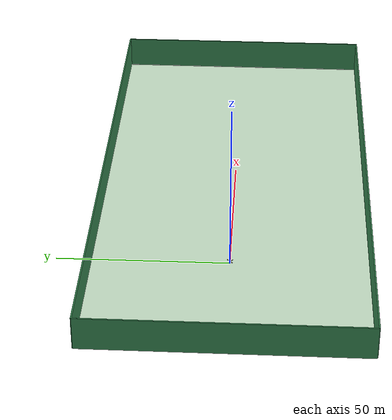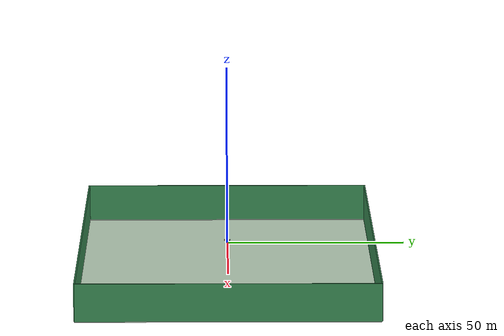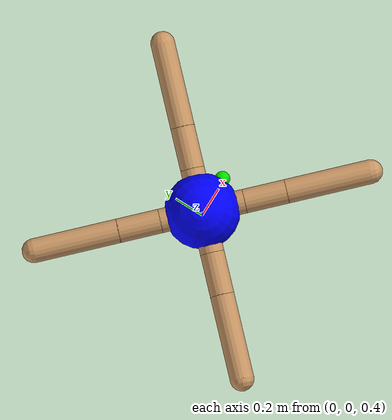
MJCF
<!--
 Описание:
	Переделаны границы углов для походки
	Установлен акселерометр и гироскоп
	Установлен дальномер

 Изменения:
	Добавлен дальномер
	Добавлена камера

 -->
<mujoco model="ant_sensor">
  <compiler angle="degree" inertiafromgeom="true"/>
  <option integrator="RK4" timestep="0.01"/>

  <custom>
    <numeric data="0.0 0.0 0.55 1.0 0.0 0.0 0.0 0.0 1.0 0.0 -1.0 0.0 -1.0 0.0 1.0" name="init_qpos"/>
  </custom>

  <default>
    <joint armature="1" damping="1" limited="true"/>
    <geom conaffinity="0" condim="3" density="5.0" friction="1 0.5 0.5" margin="0.01" rgba="0.8 0.6 0.4 1"/>
  </default>

  <asset>
    <texture builtin="gradient" height="100" rgb1="1 1 1" rgb2="0 0 0" type="skybox" width="100"/>
    <texture builtin="flat" height="1278" mark="cross" markrgb="1 1 1" name="texgeom" random="0.01" rgb1="0.8 0.6 0.4" rgb2="0.8 0.6 0.4" type="cube" width="127"/>
    <texture builtin="checker" height="100" name="texplane" rgb1="0 0 0" rgb2="0.8 0.8 0.8" type="2d" width="100"/>
    <material name="MatPlane" reflectance="0.5" shininess="1" specular="1" texrepeat="60 60" texture="texplane"/>
    <material name="geom" texture="texgeom" texuniform="true"/>
  </asset>

  <worldbody>
    <light cutoff="100" diffuse="1 1 1" dir="-0 0 -1.3" directional="true" exponent="1" pos="0 0 1.3" specular=".1 .1 .1"/>
    <geom conaffinity="1" condim="3" material="MatPlane" name="floor" pos="40 0 0" rgba="0.8 0.9 0.8 1" size="80 40 40" type="plane"/>
	<geom name="start_point" pos="0 0 0.0001" rgba="0 0.2 0.8 0.5" size="1 1 1" type="plane"/>

	<geom name="behind_wall" type="box" pos="-40 0 5" size="0.2 40 5" rgba="0.2 0.5 0.3 1"/>
	<geom name="ahead_wall" type="box" pos="120 0 5" size="0.2 40 5" rgba="0.2 0.5 0.3 1"/>
	<geom name="right_wall" type="box" pos="40 -40 5" size="80 0.2 5" rgba="0.2 0.5 0.3 1"/>
	<geom name="left_wall" type="box" pos="40 40 5" size="80 0.2 5" rgba="0.2 0.5 0.3 1"/>

    <body name="torso" pos="0 0 0.75">
      <camera name="track" mode="trackcom" pos="0 -3 0.3" xyaxes="1 0 0 0 0 1"/>
      <geom name="torso_geom" pos="0 0 0" size="0.25" type="sphere" rgba="0 0 1 1"/>
      <joint armature="0" damping="0" limited="false" margin="0.01" name="root" pos="0 0 0" type="free"/>
      <body name="front_left_leg" pos="0 0 0">
        <geom fromto="0.0 0.0 0.0 0.2 0.2 0.0" name="aux_1_geom" size="0.08" type="capsule"/>
        <body name="aux_1" pos="0.2 0.2 0">
          <joint axis="0 0 1" name="hip_1" pos="0.0 0.0 0.0" range="-30 45" type="hinge"/>
          <geom fromto="0.0 0.0 0.0 0.2 0.2 0.0" name="left_leg_geom" size="0.08" type="capsule"/>
          <body pos="0.2 0.2 0">
            <joint axis="-1 1 0" name="ankle_1" pos="0.0 0.0 0.0" range="30 90" type="hinge"/>
            <geom fromto="0.0 0.0 0.0 0.4 0.4 0.0" name="left_ankle_geom" size="0.08" type="capsule"/>
          </body>
        </body>
      </body>
      <body name="front_right_leg" pos="0 0 0">
        <geom fromto="0.0 0.0 0.0 -0.2 0.2 0.0" name="aux_2_geom" size="0.08" type="capsule"/>
        <body name="aux_2" pos="-0.2 0.2 0">
          <joint axis="0 0 1" name="hip_2" pos="0.0 0.0 0.0" range="-45 30" type="hinge"/>
          <geom fromto="0.0 0.0 0.0 -0.2 0.2 0.0" name="right_leg_geom" size="0.08" type="capsule"/>
          <body pos="-0.2 0.2 0">
            <joint axis="1 1 0" name="ankle_2" pos="0.0 0.0 0.0" range="-90 -30" type="hinge"/>
            <geom fromto="0.0 0.0 0.0 -0.4 0.4 0.0" name="right_ankle_geom" size="0.08" type="capsule"/>
          </body>
        </body>
      </body>
      <body name="back_leg" pos="0 0 0">
        <geom fromto="0.0 0.0 0.0 -0.2 -0.2 0.0" name="aux_3_geom" size="0.08" type="capsule"/>
        <body name="aux_3" pos="-0.2 -0.2 0">
          <joint axis="0 0 1" name="hip_3" pos="0.0 0.0 0.0" range="-30 45" type="hinge"/>
          <geom fromto="0.0 0.0 0.0 -0.2 -0.2 0.0" name="back_leg_geom" size="0.08" type="capsule"/>
          <body pos="-0.2 -0.2 0">
            <joint axis="-1 1 0" name="ankle_3" pos="0.0 0.0 0.0" range="-90 -30" type="hinge"/>
            <geom fromto="0.0 0.0 0.0 -0.4 -0.4 0.0" name="third_ankle_geom" size="0.08" type="capsule"/>
          </body>
        </body>
      </body>
      <body name="right_back_leg" pos="0 0 0">
        <geom fromto="0.0 0.0 0.0 0.2 -0.2 0.0" name="aux_4_geom" size="0.08" type="capsule"/>
        <body name="aux_4" pos="0.2 -0.2 0">
          <joint axis="0 0 1" name="hip_4" pos="0.0 0.0 0.0" range="-45 30" type="hinge"/>
          <geom fromto="0.0 0.0 0.0 0.2 -0.2 0.0" name="rightback_leg_geom" size="0.08" type="capsule"/>
          <body pos="0.2 -0.2 0">
            <joint axis="1 1 0" name="ankle_4" pos="0.0 0.0 0.0" range="30 90" type="hinge"/>
            <geom fromto="0.0 0.0 0.0 0.4 -0.4 0.0" name="fourth_ankle_geom" size="0.08" type="capsule"/>
          </body>
        </body>
      </body>

	  <!-- Ссылка на датчики -->
	  <site name="IMU"/>
	  <site name="range_site" pos="0.25 0 0" euler="0 90 0" rgba="0 0.9 0 1" size="0.05"/>
	  <camera name="track_cam" pos="0 -4 1" euler ="80 0 0" mode="trackcom"/>
    </body>

  </worldbody>
  <actuator>
    <position ctrllimited="true" ctrlrange="-0.785 0.524" joint="hip_4"   kp="250" kv="10"/>
	<position ctrllimited="true" ctrlrange="0.524 1.571"   joint="ankle_4" kp="250" kv="10"/>
    <position ctrllimited="true" ctrlrange="-0.524 0.785" joint="hip_1"   kp="250" kv="10"/>
    <position ctrllimited="true" ctrlrange="0.524 1.571"   joint="ankle_1" kp="250" kv="10"/>
    <position ctrllimited="true" ctrlrange="-0.785 0.524" joint="hip_2"   kp="250" kv="10"/>
    <position ctrllimited="true" ctrlrange="-1.571 -0.524" joint="ankle_2" kp="250" kv="10"/>
    <position ctrllimited="true" ctrlrange="-0.524 0.785" joint="hip_3"   kp="250" kv="10"/>
    <position ctrllimited="true" ctrlrange="-1.571 -0.524" joint="ankle_3" kp="250" kv="10"/>
  </actuator>

  <!-- Добавлены три датчика -->
  <sensor>
    <accelerometer name="accelerometer" cutoff="9.81" site="IMU"/>
  </sensor>
  <sensor>
    <gyro name="gyro" cutoff="250" site="IMU"/>
  </sensor>
  <sensor>
	<rangefinder name="range_sensor" cutoff="500" site="range_site"/>
  </sensor>
</mujoco>
